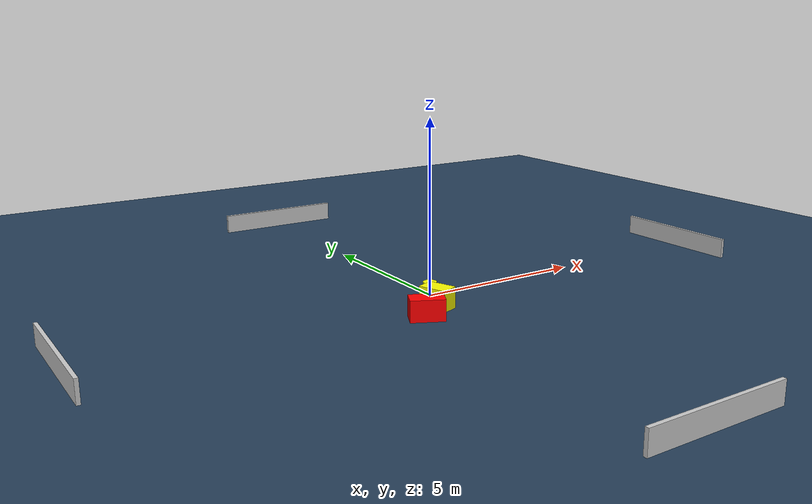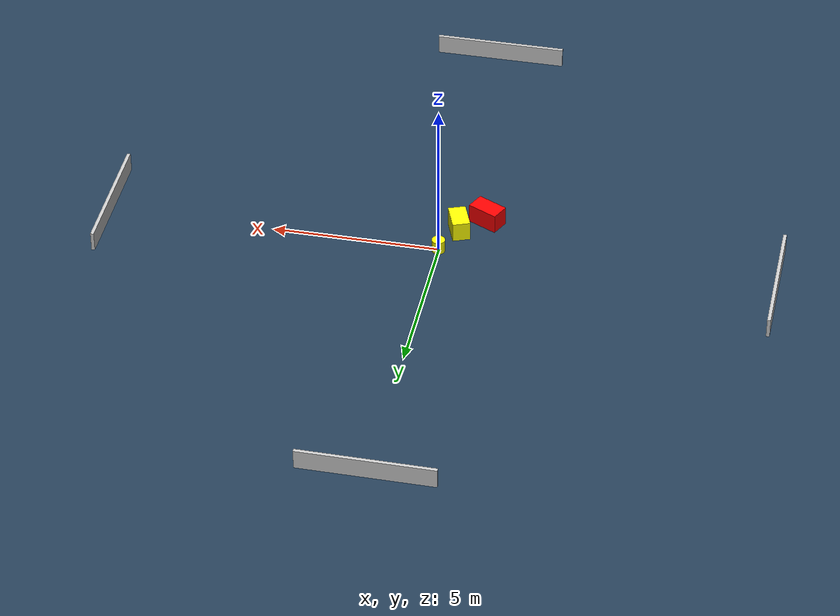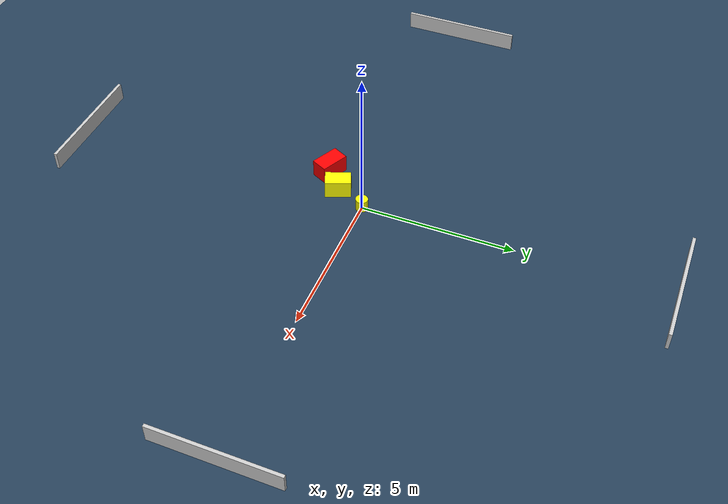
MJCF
<?xml version="1.0" ?>
<mujoco model="generated_environment">
  <option timestep="0.01" integrator="RK4" cone="elliptic"/>
  <default>
    <geom density="1"/>
  </default>
  <asset>
    <texture builtin="gradient" height="3072" name="skybox" rgb1="0.3 0.5 0.7" rgb2="0 0 0" type="skybox" width="512"/>
    <texture builtin="checker" height="300" name="groundplane" rgb1="0.2 0.3 0.4" rgb2="0.1 0.2 0.3" type="2d" width="300"/>
    <material name="groundplane" reflectance="0.2" texrepeat="5 5" texture="groundplane"/>
  </asset>
  <worldbody>
    <light dir="0 0 -1" directional="true" pos="0 0 1.5"/>
    <geom condim="3" friction="0.5 0.005 0.001" material="groundplane" name="floor" pos="0 0 0" size="0 0 0.05" type="plane"/>
    <body name="walls">
      <geom name="wall_1" condim="4" pos="-10.0 0.0 0.3" rgba="0.800000011920929 0.800000011920929 0.800000011920929 1.0" size="0.05 2.0 0.3" type="box"/>
      <geom name="wall_2" condim="4" pos="10.0 0.0 0.3" rgba="0.800000011920929 0.800000011920929 0.800000011920929 1.0" size="0.05 2.0 0.3" type="box"/>
      <geom name="wall_3" condim="4" pos="0.0 -10.0 0.3" rgba="0.800000011920929 0.800000011920929 0.800000011920929 1.0" size="2.0 0.05 0.3" type="box"/>
      <geom name="wall_4" condim="4" pos="0.0 10.0 0.3" rgba="0.800000011920929 0.800000011920929 0.800000011920929 1.0" size="2.0 0.05 0.3" type="box"/>
    </body>
    <body name="robot">
      <joint name="joint_x" type="slide" pos="0 0 0" axis="1 0 0"/>
      <joint name="joint_y" type="slide" pos="0 0 0" axis="0 1 0"/>
      <geom name="robot" type="cylinder" pos="0.0 0.0 0.2" size="0.2 0.2 0.0" mass="5.0" friction="1.0 0.005 0.0001" condim="4" rgba="1.0 1.0 0.0 1.0"/>
    </body>
    <body name="obstacle_1_movable">
      <geom name="obstacle_1_movable" condim="4" pos="-0.4240817074282892 -0.9914416134966608 0.3" euler="0 0 200.89263372811075" friction="0.0 0.005 0.001" rgba="1.0 1.0 0.0 1.0" size="0.2636317489267167 0.416773935858715 0.3" type="box" mass="0.1"/>
      <joint type="free"/>
    </body>
    <body name="obstacle_2_static">
      <geom name="obstacle_2_static" condim="4" pos="-1.1672994546504456 -1.5951720587191105 0.3" euler="0 0 244.15116178428764" friction="0.0 0.005 0.001" rgba="1.0 0.0 0.0 1.0" size="0.27514602587001635 0.47132217013798733 0.3" type="box"/>
    </body>
  </worldbody>
  <actuator>
    <motor name="actuator_x" joint="joint_x" gear="1" ctrlrange="-1 1"/>
    <motor name="actuator_y" joint="joint_y" gear="1" ctrlrange="-1 1"/>
  </actuator>
</mujoco>
